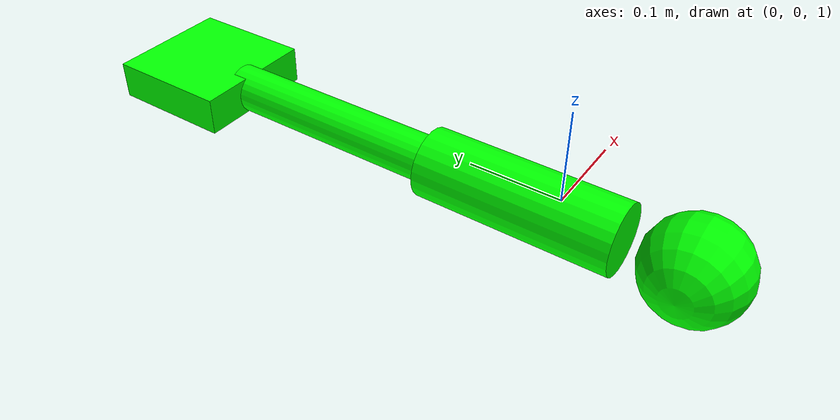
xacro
<?xml version="1.0"?>
<robot xmlns:xacro="http://www.ros.org/wiki/xacro" name="upper_arm">
    <xacro:arg name="initial_positions_file" default="initial_positions.yaml" />

    <!-- Import upper_arm urdf file -->
    <xacro:include filename="$(find image_pose_tracking)/config/right_arm.urdf" />

    <!-- Import control_xacro -->
    <xacro:include filename="upper_arm.ros2_control.xacro" />

    <xacro:upper_arm_ros2_control name="FakeSystem" initial_positions_file="$(arg initial_positions_file)"/>

</robot>

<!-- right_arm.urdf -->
<robot name="upper_arm">

    <material name="color">
        <color rgba="0 1 0 1"/>
    </material>

    <link name="camera_depth_optical_frame"/>

    <joint name="world_to_shoulder" type="fixed">
        <parent link="camera_depth_optical_frame"/>
        <child link="RightShoulder"/>
        <origin xyz="-0.0361881  -0.14083758  1.01600003" rpy="3.14 1.57 0"/>
    </joint>

    <!--  shoudler, 3DOF -->
    <link name="RightShoulder">

        <visual>
			<!--box origin wrt jRightC7Shoulder. RPY rotated of pi/2.-->
            <origin xyz="0 0 0" rpy="0 0 0" />
            <geometry>
                <sphere radius="0.05"/>
            </geometry>
            <material name="color"/>
        </visual>
    </link>

    <joint name="jRightShoulder_rotx" type="revolute">
        <origin xyz="0 0 0" rpy="0 0 0"/>
        <parent link="RightShoulder"/>
        <child link="RightUpperArm_f1"/>
        <dynamics damping="0.1" friction="0.0"/>
        <limit effort="30" velocity="1.0" lower="-2.35619" upper="1.5708" />
        <axis xyz="1 0 0" />
    </joint>

    <link name="RightUpperArm_f1">
        <inertial>
            <mass value="0"/>
            <origin xyz="0 0 0" rpy="0 0 0" />
            <inertia ixx="0" iyy="0" izz="0" ixy="0" ixz="0" iyz="0"/>
        </inertial>
    </link>

    <joint name="jRightShoulder_rotz" type="revolute">
        <origin xyz="0 0 0" rpy="0 0 0"/>
        <parent link="RightUpperArm_f1"/>
        <child link="RightUpperArm_f2"/>
        <dynamics damping="0.1" friction="0.0"/>
        <limit effort="30" velocity="1.0" lower="-0.785398" upper="3.14159" />
        <axis xyz="0 0 1" />
    </joint>

    <link name="RightUpperArm_f2">
        <inertial>
            <mass value="0"/>
            <origin xyz="0 0 0" rpy="0 0 0" />
            <inertia ixx="0" iyy="0" izz="0" ixy="0" ixz="0" iyz="0"/>
        </inertial>
    </link>

    <joint name="jRightShoulder_roty" type="revolute">
        <origin xyz="0 0 0" rpy="0 0 0"/>
        <parent link="RightUpperArm_f2"/>
        <child link="RightUpperArm"/>
        <dynamics damping="0.1" friction="0.0"/>
        <limit effort="30" velocity="1.0" lower="-1.5708" upper="1.5708" />
        <axis xyz="0 1 0" />
    </joint>

    <!-- elbow, 3 dof -->
    <link name="RightUpperArm">
        <inertial>
            <mass value="2.181"/>
			<!--COM origin wrt jRightShoulder-->
            <origin xyz="0    -0.16437           0" rpy="0 0 0" />
            <inertia ixx="0.020332" iyy="0.0013806" izz="0.020332" ixy="0" ixz="0" iyz="0"/>
        </inertial>

        <visual>
			<!--box origin wrt jRightShoulder. RPY rotated of pi/2.-->
            <origin xyz="0    -0.16437           0" rpy="1.5708 0 0" />
            <geometry>
                <cylinder length="0.2" radius="0.035581"/>
            </geometry>
            <material name="color"/>
        </visual>

        <collision>
			<!--box origin wrt jRightShoulder. RPY rotated of pi/2.-->
            <origin xyz="0    -0.16437           0" rpy="1.5708 0 0" />
            <geometry>
                <cylinder length="0.24" radius="0.035581"/>
            </geometry>
        </collision>

    </link>

    <joint name="jRightElbow_rotz" type="revolute">
        <origin xyz="0 -0.24 0" rpy="0 0 0"/>
        <parent link="RightUpperArm"/>
        <child link="RightForeArm"/>
        <dynamics damping="0.1" friction="0.0"/>
        <limit effort="30" velocity="1.0" lower="0" upper="2.53073" />
        <axis xyz="0 0 1" />
    </joint>

    <link name="RightForeArm">
        <inertial>
            <mass value="1.454"/>
			<!--COM origin wrt jRightElbow-->
            <origin xyz="0    -0.135           0" rpy="0 0 0" />
            <inertia ixx="0.008948" iyy="0.00040906" izz="0.008948" ixy="0" ixz="0" iyz="0"/>
        </inertial>

        <visual>
			<!--box origin wrt jRightElbow. RPY rotated of pi/2.-->
            <origin xyz="0    -0.135           0" rpy="1.5708 0 0" />
            <geometry>
                <cylinder length="0.27" radius="0.023721"/>
            </geometry>
            <material name="color"/>
        </visual>

        <collision>
			<!--box origin wrt jRightElbow. RPY rotated of pi/2.-->
            <origin xyz="0    -0.135           0" rpy="1.5708 0 0" />
            <geometry>
                <cylinder length="0.27" radius="0.023721"/>
            </geometry>
        </collision>

    </link>

    <joint name="jRightElbow_roty" type="revolute">
        <origin xyz="0 -0.27 0" rpy="0 0 0"/>
        <parent link="RightForeArm"/>
        <child link="RightForeArm_f1"/>
        <dynamics damping="0.1" friction="0.0"/>
        <limit effort="30" velocity="1.0" lower="-1.5708" upper="1.48353" />
        <axis xyz="0 1 0" />
    </joint>

    <link name="RightForeArm_f1">
        <inertial>
            <mass value="0"/>
            <origin xyz="0 0 0" rpy="0 0 0" />
            <inertia ixx="0" iyy="0" izz="0" ixy="0" ixz="0" iyz="0"/>
        </inertial>
    </link>

    <!-- wrist 2 dofs -->
    <joint name="jRightWrist_rotx" type="revolute">
        <origin xyz="0    0  0" rpy="0 0 0"/>
        <parent link="RightForeArm_f1"/>
        <child link="RightHand_f1"/>
        <dynamics damping="0.1" friction="0.0"/>
        <limit effort="30" velocity="1.0" lower="-0.872665" upper="1.0472" />
        <axis xyz="1 0 0" />
    </joint>

    <link name="RightHand_f1">
        <inertial>
            <mass value="0"/>
            <origin xyz="0 0 0" rpy="0 0 0" />
            <inertia ixx="0" iyy="0" izz="0" ixy="0" ixz="0" iyz="0"/>
        </inertial>
    </link>

    <joint name="jRightWrist_rotz" type="revolute">
        <origin xyz="0 0 0" rpy="0 0 0"/>
        <parent link="RightHand_f1"/>
        <child link="RightHand"/>
        <dynamics damping="0.1" friction="0.0"/>
        <limit effort="30" velocity="1.0" lower="-0.523599" upper="0.349066" />
        <axis xyz="0 0 1" />
    </joint>

    <link name="RightHand">
        <inertial>
            <mass value="0.4362"/>
			<!--COM origin wrt jRightWrist-->
            <origin xyz="0    -0.05           0" rpy="0 0 0" />
            <inertia ixx="0.0015471" iyy="0.00073303" izz="0.0021165" ixy="0" ixz="0" iyz="0"/>
        </inertial>

        <visual>
			<!--box origin wrt jRightWrist-->
            <origin xyz="0    -0.05           0" rpy="0 0 0" />
            <geometry>
                <box size="0.04     0.133    0.133"/>
            </geometry>
            <material name="color"/>
        </visual>

        <collision>
			<!--box origin wrt jRightWrist-->
            <origin xyz="0    -0.05           0" rpy="0 0 0" />
            <geometry>
                <box size="0.04     0.133    0.133"/>
            </geometry>
        </collision>

    </link>

<!-- End of right arm configuration -->
</robot>
